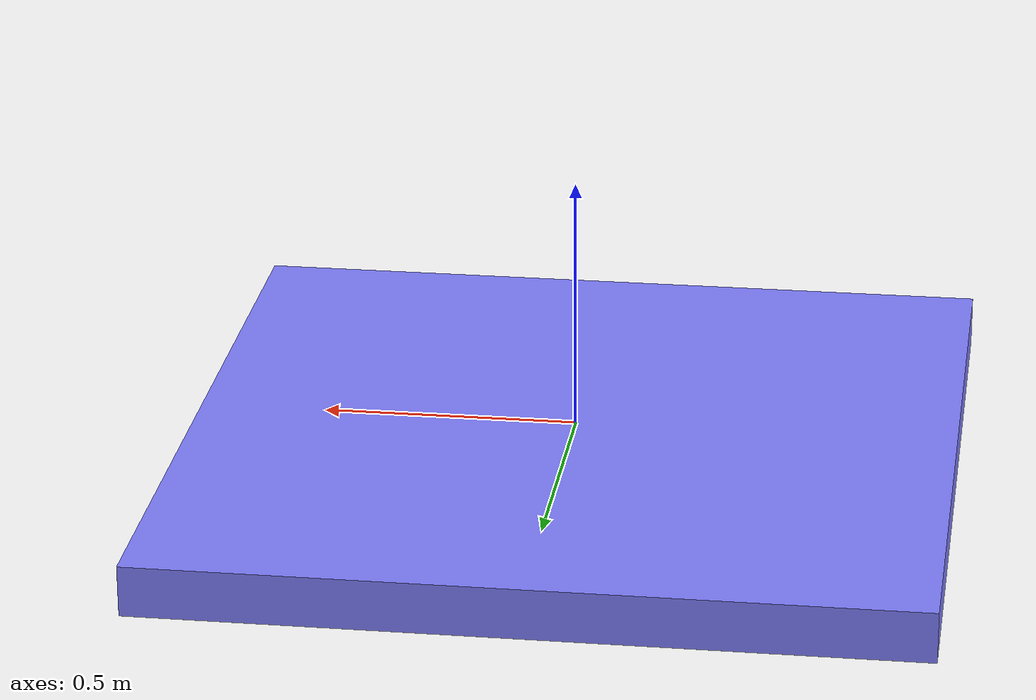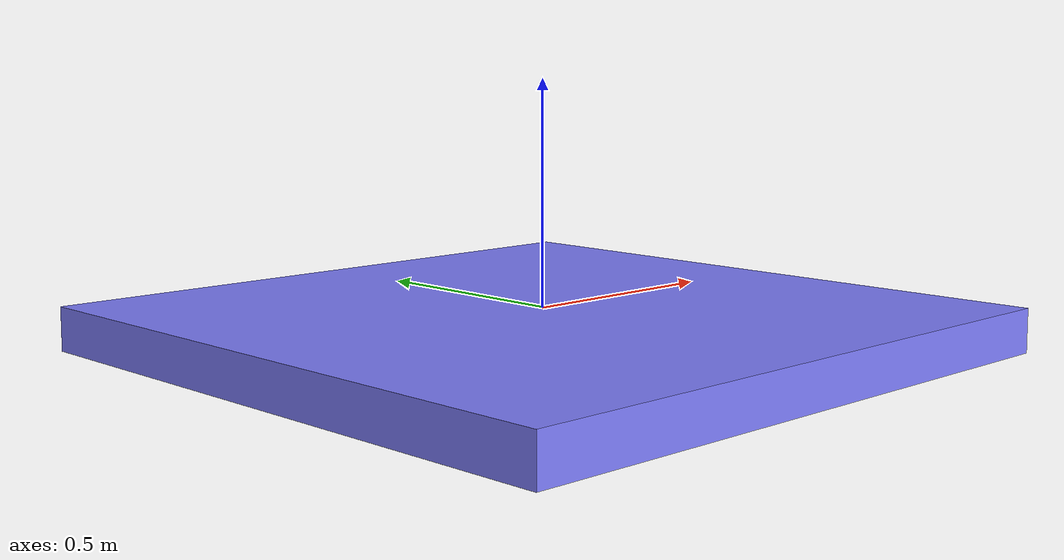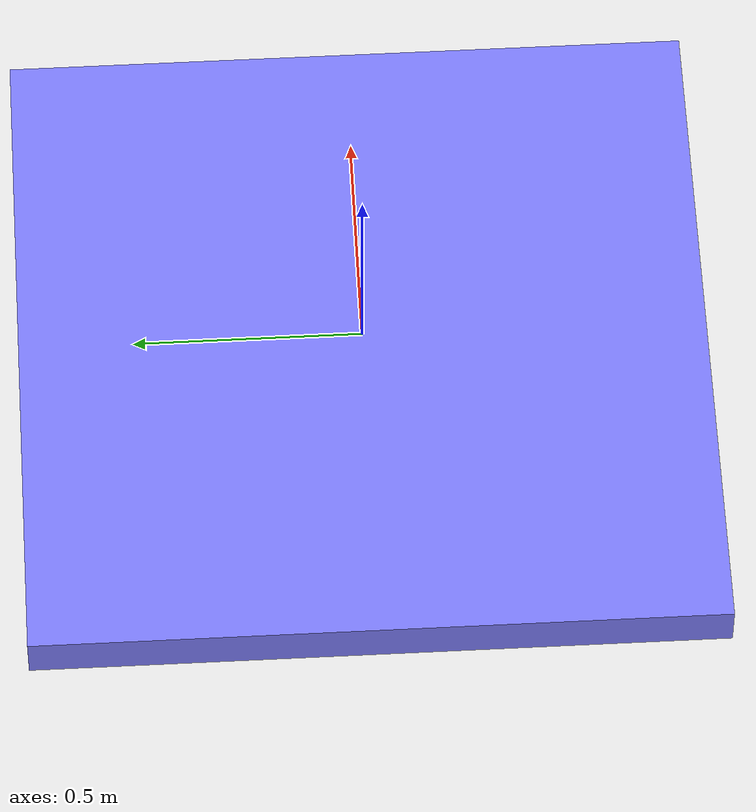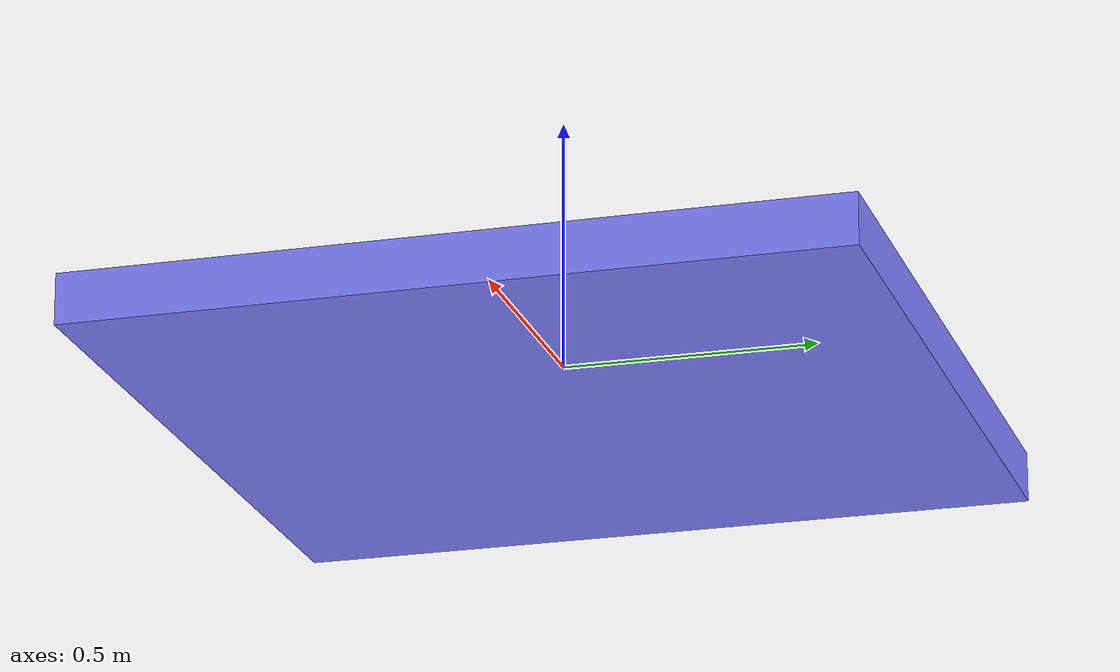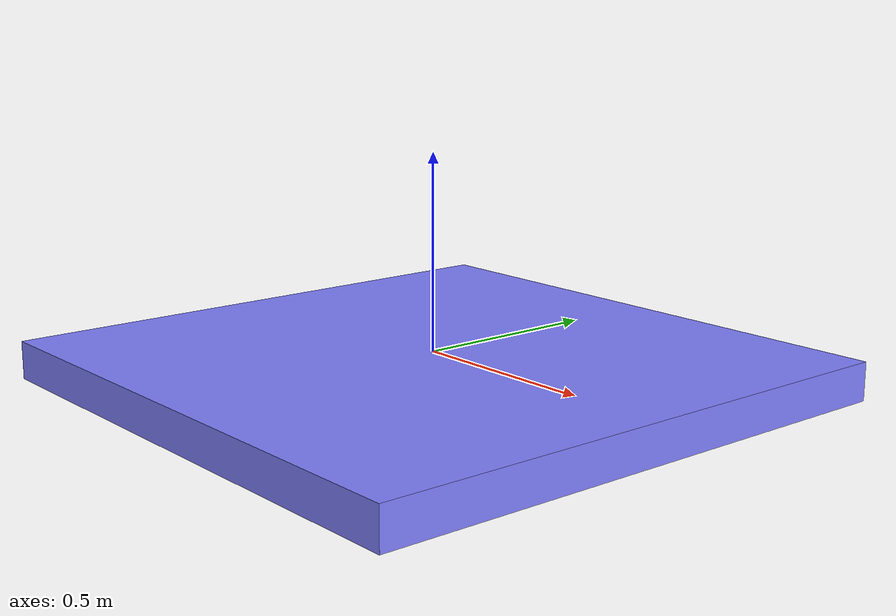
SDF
<?xml version="1.0"?>
<sdf version="1.7" xmlns:drake="http://drake.mit.edu">
  <model name="hydro_table">
    <link name="link">
      <visual name="visual">
        <geometry><box><size>1.5 1.5 0.1</size></box></geometry>
        <pose>0 0 -0.05 0 0 0</pose>
        <material><diffuse>0.5 0.5 1</diffuse></material>
      </visual>
      <collision name="collision">
        <geometry><box><size>1.5 1.5 0.1</size></box></geometry>
        <pose>0 0 -0.05 0 0 0</pose>
        <drake:proximity_properties>
          <drake:compliant_hydroelastic/>
          <drake:hydroelastic_modulus>5.0e6</drake:hydroelastic_modulus>
          <drake:hunt_crossley_dissipation>5.0</drake:hunt_crossley_dissipation>
        </drake:proximity_properties>
      </collision>
    </link>
  </model>
</sdf>
